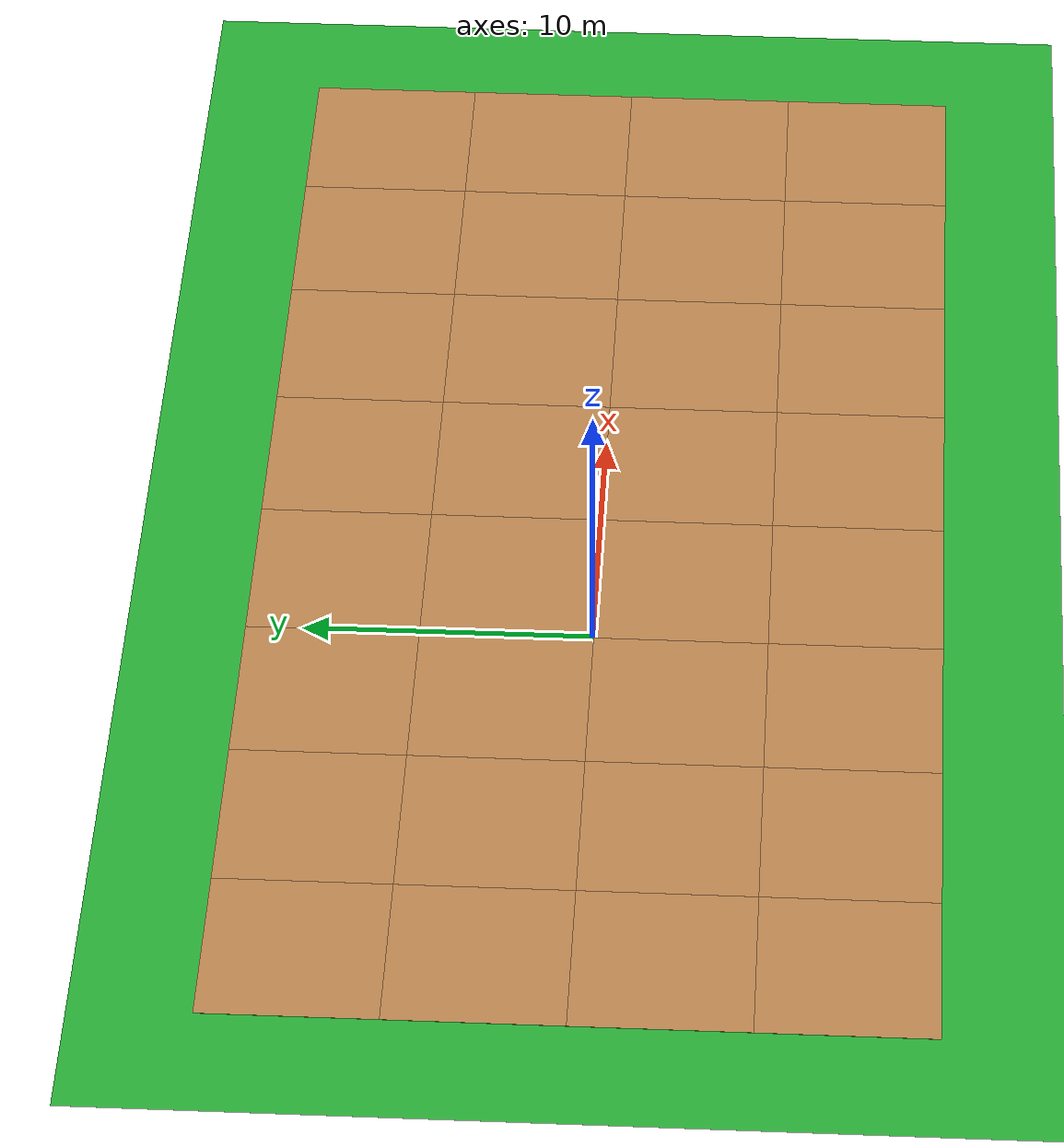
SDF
<sdf version="1.5">
 <world name="default">
  <include><uri>model://sun</uri></include>
  <include><uri>model://outside_floor</uri><pose>5 0 -0.01 0 0 0</pose></include>
  <include><uri>model://office_floor</uri><name>floor</name><pose>-15.0 3 0 0 0 0</pose></include>
  <include><uri>model://office_floor</uri><name>floor1</name><pose>-9.0 3 0 0 0 0</pose></include>
  <include><uri>model://office_floor</uri><name>floor2</name><pose>-3.0 3 0 0 0 0</pose></include>
  <include><uri>model://office_floor</uri><name>floor3</name><pose>3.0 3 0 0 0 0</pose></include>
  <include><uri>model://office_floor</uri><name>floor4</name><pose>9.0 3 0 0 0 0</pose></include>
  <include><uri>model://office_floor</uri><name>floor5</name><pose>15.0 3 0 0 0 0</pose></include>
  <include><uri>model://office_floor</uri><name>floor6</name><pose>21.0 3 0 0 0 0</pose></include>
  <include><uri>model://office_floor</uri><name>floor7</name><pose>27.0 3 0 0 0 0</pose></include>
  <include><uri>model://office_floor</uri><name>floor10</name><pose>-15.0 9 0 0 0 0</pose></include>
  <include><uri>model://office_floor</uri><name>floor11</name><pose>-9.0 9 0 0 0 0</pose></include>
  <include><uri>model://office_floor</uri><name>floor12</name><pose>-3.0 9 0 0 0 0</pose></include>
  <include><uri>model://office_floor</uri><name>floor13</name><pose>3.0 9 0 0 0 0</pose></include>
  <include><uri>model://office_floor</uri><name>floor14</name><pose>9.0 9 0 0 0 0</pose></include>
  <include><uri>model://office_floor</uri><name>floor15</name><pose>15.0 9 0 0 0 0</pose></include>
  <include><uri>model://office_floor</uri><name>floor16</name><pose>21.0 9 0 0 0 0</pose></include>
  <include><uri>model://office_floor</uri><name>floor17</name><pose>27.0 9 0 0 0 0</pose></include>
  <include><uri>model://office_floor</uri><name>floor20</name><pose>-15.0 -3 0 0 0 0</pose></include>
  <include><uri>model://office_floor</uri><name>floor21</name><pose>-9.0 -3 0 0 0 0</pose></include>
  <include><uri>model://office_floor</uri><name>floor22</name><pose>-3.0 -3 0 0 0 0</pose></include>
  <include><uri>model://office_floor</uri><name>floor23</name><pose>3.0 -3 0 0 0 0</pose></include>
  <include><uri>model://office_floor</uri><name>floor24</name><pose>9.0 -3 0 0 0 0</pose></include>
  <include><uri>model://office_floor</uri><name>floor25</name><pose>15.0 -3 0 0 0 0</pose></include>
  <include><uri>model://office_floor</uri><name>floor26</name><pose>21.0 -3 0 0 0 0</pose></include>
  <include><uri>model://office_floor</uri><name>floor27</name><pose>27.0 -3 0 0 0 0</pose></include>
  <include><uri>model://office_floor</uri><name>floor30</name><pose>-15.0 -9 0 0 0 0</pose></include>
  <include><uri>model://office_floor</uri><name>floor31</name><pose>-9.0 -9 0 0 0 0</pose></include>
  <include><uri>model://office_floor</uri><name>floor32</name><pose>-3.0 -9 0 0 0 0</pose></include>
  <include><uri>model://office_floor</uri><name>floor33</name><pose>3.0 -9 0 0 0 0</pose></include>
  <include><uri>model://office_floor</uri><name>floor34</name><pose>9.0 -9 0 0 0 0</pose></include>
  <include><uri>model://office_floor</uri><name>floor35</name><pose>15.0 -9 0 0 0 0</pose></include>
  <include><uri>model://office_floor</uri><name>floor36</name><pose>21.0 -9 0 0 0 0</pose></include>
  <include><uri>model://office_floor</uri><name>floor37</name><pose>27.0 -9 0 0 0 0</pose></include>
 </world>
</sdf>

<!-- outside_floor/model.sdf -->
<sdf version="1.5">
  <model name="outside_floor">
    <static>true</static>
    <link name="link">
      <collision name="collision">
        <geometry>
          <plane>
            <normal>0 0 1</normal>
            <size>75 45</size>
          </plane>
        </geometry>
        <surface>
          <contact>
             <collide_bitmask>0xffff</collide_bitmask>
          </contact>
          <friction>
            <ode>
              <mu>100</mu>
              <mu2>50</mu2>
            </ode>
          </friction>
        </surface>
      </collision>
      <visual name="visual">
        <cast_shadows>false</cast_shadows>
        <geometry>
          <plane>
            <normal>0 0 1</normal>
            <size>75 35</size>
          </plane>
        </geometry>
        <material>
          <script>
            <uri>file://media/materials/scripts/gazebo.material</uri>
            <name>Gazebo/Green</name>
          </script>
        </material>
      </visual>
    </link>
  </model>
</sdf>

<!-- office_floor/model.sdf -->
<sdf version="1.5">
  <model name="office_floor">
    <static>true</static>
    <link name="link">
      <collision name="collision">
        <geometry>
          <plane>
            <normal>0 0 1</normal>
            <size>6 6</size>
          </plane>
        </geometry>
        <surface>
          <contact>
             <collide_bitmask>0xffff</collide_bitmask>
          </contact>
          <friction>
            <ode>
              <mu>100</mu>
              <mu2>50</mu2>
            </ode>
          </friction>
        </surface>
      </collision>
      <visual name="visual">
        <cast_shadows>false</cast_shadows>
        <geometry>
          <plane>
            <normal>0 0 1</normal>
            <size>6 6</size>
          </plane>
        </geometry>
        <material>
          <script>
            <uri>file://media/materials/scripts/gazebo.material</uri>
            <name>Gazebo/Wood</name>
          </script>
        </material>
      </visual>
    </link>
  </model>
</sdf>
